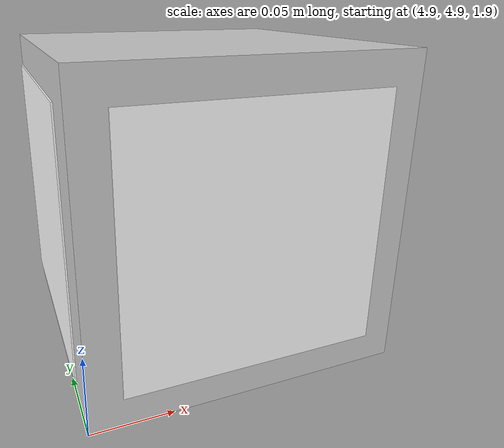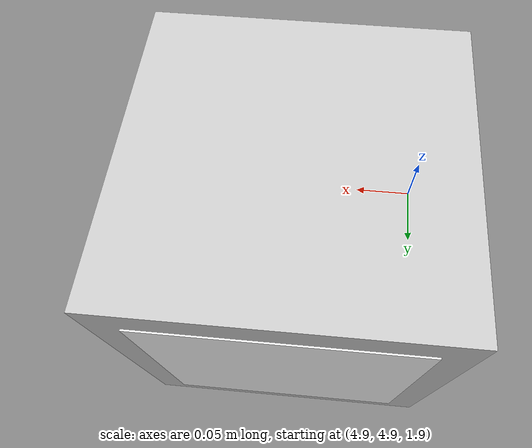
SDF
<sdf version="1.7">
 <world name="empty_world">
  <physics type="ode"><max_step_size>0.01</max_step_size></physics>
  <plugin filename="ignition-gazebo-physics-system" name="ignition::gazebo::systems::Physics"/>
  <plugin filename="ignition-gazebo-user-commands-system" name="ignition::gazebo::systems::UserCommands"/>
  <plugin filename="ignition-gazebo-scene-broadcaster-system" name="ignition::gazebo::systems::SceneBroadcaster"/>
  <plugin filename="ignition-gazebo-sensors-system" name="ignition::gazebo::systems::Sensors">
   <render_engine>ogre</render_engine>
  </plugin>
  <light type="directional" name="sun">
   <pose>0 0 10 0 0 0</pose>
   <diffuse>0.8 0.8 0.8 1</diffuse>
   <specular>0.2 0.2 0.2 1</specular>
   <attenuation>
    <range>1000</range>
    <constant>0.9</constant>
    <linear>0.01</linear>
    <quadratic>0.001</quadratic>
   </attenuation>
   <direction>-0.5 0.1 -0.9</direction>
  </light>
  <include><uri>model://apriltag_box</uri><name>apriltag_box_1</name><pose>5 5 2 0 0 0</pose></include>
 </world>
</sdf>

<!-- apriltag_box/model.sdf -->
<sdf version="1.9">
  <model name="apriltag_box">
    <static>false</static>
    <link name="link">
      <inertial>
        <mass>1.0</mass>
        <inertia>
          <ixx>0.006666</ixx>
          <ixy>0</ixy>
          <ixz>0</ixz>
          <iyy>0.006666</iyy>
          <iyz>0</iyz>
          <izz>0.006666</izz>
        </inertia>
      </inertial>
      <collision name="collision">
        <geometry>
          <box>
            <size>0.2 0.2 0.2</size>
          </box>
        </geometry>
      </collision>

      <!-- Main Box Body -->
      <visual name="body">
        <geometry>
          <box>
            <size>0.2 0.2 0.2</size>
          </box>
        </geometry>
        <material>
          <ambient>0.8 0.8 0.8 1</ambient>
          <diffuse>0.8 0.8 0.8 1</diffuse>
        </material>
      </visual>

      <!-- Side 0 (Front, x+) - ID 0 -->
      <visual name="visual_tag0">
        <pose>0.101 0 0 0 1.5707 0</pose>
        <geometry>
          <box>
            <size>0.16 0.16 0.001</size>
          </box>
        </geometry>
        <material>
          <ambient>1 1 1 1</ambient>
          <diffuse>1 1 1 1</diffuse>
          <pbr>
            <metal>
              <albedo_map>materials/textures/tag36_11_00000.png</albedo_map>
            </metal>
          </pbr>
        </material>
      </visual>

      <!-- Side 1 (Left, y+) - ID 1 -->
      <visual name="visual_tag2">
        <pose>0 0.101 0 1.5707 0 0</pose>
        <geometry>
          <box>
            <size>0.16 0.16 0.001</size>
          </box>
        </geometry>
        <material>
          <ambient>1 1 1 1</ambient>
          <diffuse>1 1 1 1</diffuse>
          <pbr>
            <metal>
              <albedo_map>materials/textures/tag36_11_00001.png</albedo_map>
            </metal>
          </pbr>
        </material>
      </visual>

      <!-- Side 2 (Back, x-) - ID 2 -->
      <visual name="visual_tag1">
        <pose>-0.102 0 0 0 -1.5707 3.1415</pose>
        <geometry>
          <box>
            <size>0.16 0.16 0.001</size>
          </box>
        </geometry>
        <material>
          <ambient>1 1 1 1</ambient>
          <diffuse>1 1 1 1</diffuse>
          <pbr>
            <metal>
              <albedo_map>materials/textures/tag36_11_00002.png</albedo_map>
            </metal>
          </pbr>
        </material>
      </visual>

      <!-- Side 3 (Right, y-) - ID 3 -->
      <visual name="visual_tag3">
        <pose>0 -0.102 0 -1.5707 0 0</pose>
        <geometry>
          <box>
            <size>0.16 0.16 0.001</size>
          </box>
        </geometry>
        <material>
          <ambient>1 1 1 1</ambient>
          <diffuse>1 1 1 1</diffuse>
          <pbr>
            <metal>
              <albedo_map>materials/textures/tag36_11_00003.png</albedo_map>
            </metal>
          </pbr>
        </material>
      </visual>
    </link>
  </model>
</sdf>
